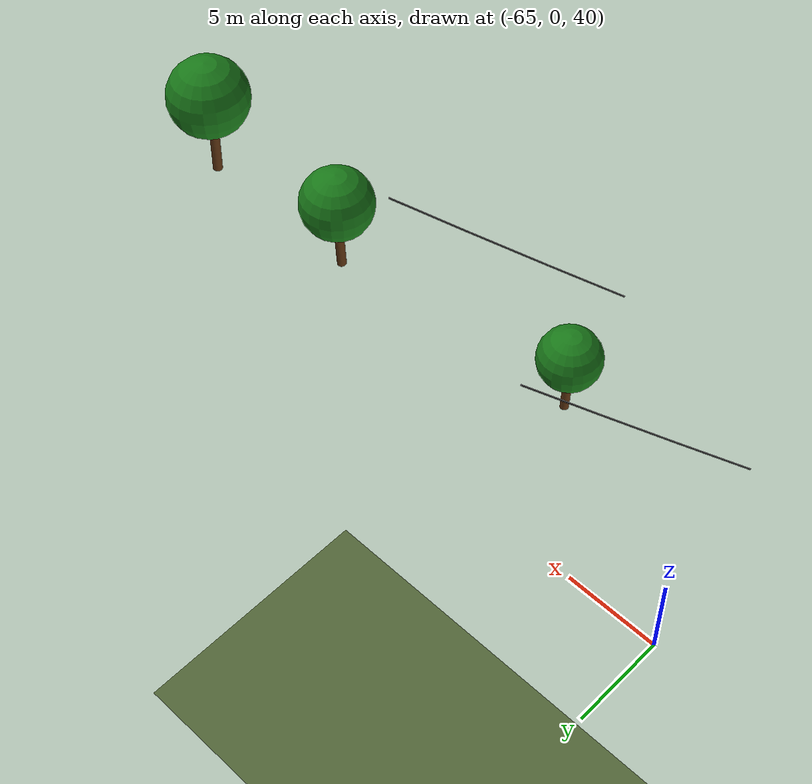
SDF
<sdf version="1.9">
 <world name="power_line_inspection">
  <model name="ground_plane">
   <static>true</static>
   <pose>0 0 -0.01 0 0 0</pose>
   <link name="link">
    <collision name="collision">
     <geometry><plane><normal>0 0 1</normal><size>600 600</size></plane></geometry>
     <surface><friction><ode><mu>1.0</mu><mu2>1.0</mu2></ode></friction></surface>
    </collision>
    <visual name="visual">
     <cast_shadows>false</cast_shadows>
     <geometry><plane><normal>0 0 1</normal><size>600 600</size></plane></geometry>
     <material>
      <ambient>0.28 0.35 0.18 1</ambient>
      <diffuse>0.32 0.40 0.22 1</diffuse>
      <specular>0.02 0.02 0.02 1</specular>
     </material>
    </visual>
   </link>
  </model>
  <model name="wire_L_s22">
   <static>true</static>
   <pose>-53.939 -7.238 49.955 -0.90326 0.78367 -0.39562</pose>
   <link name="link">
    <visual name="v">
     <geometry><cylinder><radius>0.04</radius><length>3.9274</length></cylinder></geometry>
     <material><ambient>0.08 0.08 0.08 1</ambient><diffuse>0.08 0.08 0.08 1</diffuse></material>
    </visual>
    <collision name="c">
     <geometry><cylinder><radius>0.04</radius><length>3.9274</length></cylinder></geometry>
    </collision>
   </link>
  </model>
  <model name="wire_L_s23">
   <static>true</static>
   <pose>-51.167 -5.053 51.699 -0.89100 0.77878 -0.38699</pose>
   <link name="link">
    <visual name="v">
     <geometry><cylinder><radius>0.04</radius><length>3.9468</length></cylinder></geometry>
     <material><ambient>0.08 0.08 0.08 1</ambient><diffuse>0.08 0.08 0.08 1</diffuse></material>
    </visual>
    <collision name="c">
     <geometry><cylinder><radius>0.04</radius><length>3.9468</length></cylinder></geometry>
    </collision>
   </link>
  </model>
  <model name="wire_L_s24">
   <static>true</static>
   <pose>-48.395 -2.868 53.487 -0.87898 0.77386 -0.37856</pose>
   <link name="link">
    <visual name="v">
     <geometry><cylinder><radius>0.04</radius><length>3.9666</length></cylinder></geometry>
     <material><ambient>0.08 0.08 0.08 1</ambient><diffuse>0.08 0.08 0.08 1</diffuse></material>
    </visual>
    <collision name="c">
     <geometry><cylinder><radius>0.04</radius><length>3.9666</length></cylinder></geometry>
    </collision>
   </link>
  </model>
  <model name="wire_R_s19">
   <static>true</static>
   <pose>-62.256 -6.792 44.986 -0.94149 0.79816 -0.42280</pose>
   <link name="link">
    <visual name="v">
     <geometry><cylinder><radius>0.04</radius><length>3.8715</length></cylinder></geometry>
     <material><ambient>0.08 0.08 0.08 1</ambient><diffuse>0.08 0.08 0.08 1</diffuse></material>
    </visual>
    <collision name="c">
     <geometry><cylinder><radius>0.04</radius><length>3.8715</length></cylinder></geometry>
    </collision>
   </link>
  </model>
  <model name="wire_R_s20">
   <static>true</static>
   <pose>-59.484 -4.607 46.599 -0.92850 0.79336 -0.41352</pose>
   <link name="link">
    <visual name="v">
     <geometry><cylinder><radius>0.04</radius><length>3.8897</length></cylinder></geometry>
     <material><ambient>0.08 0.08 0.08 1</ambient><diffuse>0.08 0.08 0.08 1</diffuse></material>
    </visual>
    <collision name="c">
     <geometry><cylinder><radius>0.04</radius><length>3.8897</length></cylinder></geometry>
    </collision>
   </link>
  </model>
  <model name="wire_R_s21">
   <static>true</static>
   <pose>-56.712 -2.423 48.255 -0.91576 0.78853 -0.40446</pose>
   <link name="link">
    <visual name="v">
     <geometry><cylinder><radius>0.04</radius><length>3.9084</length></cylinder></geometry>
     <material><ambient>0.08 0.08 0.08 1</ambient><diffuse>0.08 0.08 0.08 1</diffuse></material>
    </visual>
    <collision name="c">
     <geometry><cylinder><radius>0.04</radius><length>3.9084</length></cylinder></geometry>
    </collision>
   </link>
  </model>
  <model name="tree_06">
   <static>true</static>
   <pose>-35.60 -1.29 48.84 0 0 4.22</pose>
   <link name="link">
    <visual name="trunk">
     <pose>0 0 1.723 -0.023 0.039 0</pose>
     <geometry><cylinder><radius>0.235</radius><length>3.446</length></cylinder></geometry>
     <material><ambient>0.32 0.18 0.05 1</ambient><diffuse>0.38 0.21 0.07 1</diffuse></material>
    </visual>
    <collision name="trunk_c">
     <pose>0 0 1.723 0 0 0</pose>
     <geometry><cylinder><radius>0.235</radius><length>3.446</length></cylinder></geometry>
    </collision>
    <visual name="canopy">
     <pose>0 0 4.549 0 0 0</pose>
     <geometry><sphere><radius>2.005</radius></sphere></geometry>
     <material><ambient>0.07 0.38 0.07 1</ambient><diffuse>0.10 0.48 0.10 1</diffuse></material>
    </visual>
    <collision name="canopy_c">
     <pose>0 0 4.549 0 0 0</pose>
     <geometry><sphere><radius>2.005</radius></sphere></geometry>
    </collision>
   </link>
  </model>
  <model name="tree_09">
   <static>true</static>
   <pose>-43.29 -2.02 47.16 0 0 3.49</pose>
   <link name="link">
    <visual name="trunk">
     <pose>0 0 1.544 0.023 -0.007 0</pose>
     <geometry><cylinder><radius>0.227</radius><length>3.088</length></cylinder></geometry>
     <material><ambient>0.32 0.18 0.05 1</ambient><diffuse>0.38 0.21 0.07 1</diffuse></material>
    </visual>
    <collision name="trunk_c">
     <pose>0 0 1.544 0 0 0</pose>
     <geometry><cylinder><radius>0.227</radius><length>3.088</length></cylinder></geometry>
    </collision>
    <visual name="canopy">
     <pose>0 0 4.076 0 0 0</pose>
     <geometry><sphere><radius>1.797</radius></sphere></geometry>
     <material><ambient>0.07 0.38 0.07 1</ambient><diffuse>0.10 0.48 0.10 1</diffuse></material>
    </visual>
    <collision name="canopy_c">
     <pose>0 0 4.076 0 0 0</pose>
     <geometry><sphere><radius>1.797</radius></sphere></geometry>
    </collision>
   </link>
  </model>
  <model name="tree_16">
   <static>true</static>
   <pose>-54.23 -6.13 41.98 0 0 5.51</pose>
   <link name="link">
    <visual name="trunk">
     <pose>0 0 1.397 0.034 0.014 0</pose>
     <geometry><cylinder><radius>0.221</radius><length>2.795</length></cylinder></geometry>
     <material><ambient>0.32 0.18 0.05 1</ambient><diffuse>0.38 0.21 0.07 1</diffuse></material>
    </visual>
    <collision name="trunk_c">
     <pose>0 0 1.397 0 0 0</pose>
     <geometry><cylinder><radius>0.221</radius><length>2.795</length></cylinder></geometry>
    </collision>
    <visual name="canopy">
     <pose>0 0 3.689 0 0 0</pose>
     <geometry><sphere><radius>1.626</radius></sphere></geometry>
     <material><ambient>0.07 0.38 0.07 1</ambient><diffuse>0.10 0.48 0.10 1</diffuse></material>
    </visual>
    <collision name="canopy_c">
     <pose>0 0 3.689 0 0 0</pose>
     <geometry><sphere><radius>1.626</radius></sphere></geometry>
    </collision>
   </link>
  </model>
 </world>
</sdf>
